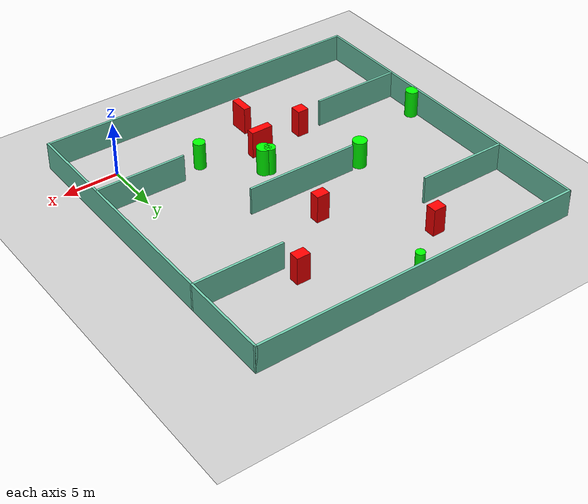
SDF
<sdf version="1.7">
 <world name="default">
  <light name="sun" type="directional">
   <pose>0 0 10 0 -0 0</pose>
   <diffuse>0.8 0.8 0.8 1</diffuse>
   <specular>0.2 0.2 0.2 1</specular>
   <attenuation>
    <range>1000</range>
    <constant>0.9</constant>
    <linear>0.01</linear>
    <quadratic>0.001</quadratic>
   </attenuation>
   <direction>-0.5 0.1 -0.9</direction>
   <spot><inner_angle>0</inner_angle><outer_angle>0</outer_angle><falloff>0</falloff></spot>
  </light>
  <model name="ground_plane">
   <static>1</static>
   <link name="link">
    <collision name="collision">
     <geometry><plane><normal>0 0 1</normal><size>100 100</size></plane></geometry>
     <surface>
      <contact><collide_bitmask>65535</collide_bitmask></contact>
      <friction><ode><mu>100</mu><mu2>50</mu2></ode></friction>
     </surface>
    </collision>
    <visual name="visual">
     <cast_shadows>0</cast_shadows>
     <geometry><plane><normal>0 0 1</normal><size>100 100</size></plane></geometry>
     <material>
      <script><uri>file://media/materials/scripts/gazebo.material</uri><name>Gazebo/Grey</name></script>
     </material>
    </visual>
   </link>
  </model>
  <gravity>0 0 -9.8</gravity>
  <magnetic_field>6e-06 2.3e-05 -4.2e-05</magnetic_field>
  <atmosphere type="adiabatic"/>
  <physics type="ode">
   <max_step_size>0.001</max_step_size>
   <real_time_factor>1</real_time_factor>
   <real_time_update_rate>1000</real_time_update_rate>
  </physics>
  <scene><ambient>0.4 0.4 0.4 1</ambient><background>0.7 0.7 0.7 1</background><shadows>1</shadows></scene>
  <spherical_coordinates>
   <surface_model>EARTH_WGS84</surface_model>
   <latitude_deg>0</latitude_deg>
   <longitude_deg>0</longitude_deg>
   <elevation>0</elevation>
   <heading_deg>0</heading_deg>
  </spherical_coordinates>
  <model name="my_base_walls">
   <link name="Wall_10">
    <collision name="Wall_10_Collision">
     <geometry><box><size>8.2 0.2 2.5</size></box></geometry>
     <pose>0 0 1.25 0 -0 0</pose>
    </collision>
    <visual name="Wall_10_Visual">
     <pose>0 0 1.25 0 -0 0</pose>
     <geometry><box><size>8.2 0.2 2.5</size></box></geometry>
     <material>
      <script><uri>file://media/materials/scripts/gazebo.material</uri><name>Gazebo/Grey</name></script>
      <ambient>0.435294 0.796078 0.67451 1</ambient>
     </material>
     <meta><layer>0</layer></meta>
    </visual>
    <pose>-11 -7 0 0 -0 0</pose>
   </link>
   <link name="Wall_12">
    <collision name="Wall_12_Collision">
     <geometry><box><size>8.2 0.2 2.5</size></box></geometry>
     <pose>0 0 1.25 0 -0 0</pose>
    </collision>
    <visual name="Wall_12_Visual">
     <pose>0 0 1.25 0 -0 0</pose>
     <geometry><box><size>8.2 0.2 2.5</size></box></geometry>
     <material>
      <script><uri>file://media/materials/scripts/gazebo.material</uri><name>Gazebo/Grey</name></script>
      <ambient>0.435294 0.796078 0.67451 1</ambient>
     </material>
     <meta><layer>0</layer></meta>
    </visual>
    <pose>-11 7 0 0 -0 0</pose>
   </link>
   <link name="Wall_14">
    <collision name="Wall_14_Collision">
     <geometry><box><size>8.2 0.2 2.5</size></box></geometry>
     <pose>0 0 1.25 0 -0 0</pose>
    </collision>
    <visual name="Wall_14_Visual">
     <pose>0 0 1.25 0 -0 0</pose>
     <geometry><box><size>8.2 0.2 2.5</size></box></geometry>
     <material>
      <script><uri>file://media/materials/scripts/gazebo.material</uri><name>Gazebo/Grey</name></script>
      <ambient>0.435294 0.796078 0.67451 1</ambient>
     </material>
     <meta><layer>0</layer></meta>
    </visual>
    <pose>11 7 0 0 -0 3.14159</pose>
   </link>
   <link name="Wall_16">
    <collision name="Wall_16_Collision">
     <geometry><box><size>10.2 0.2 2.5</size></box></geometry>
     <pose>0 0 1.25 0 -0 0</pose>
    </collision>
    <visual name="Wall_16_Visual">
     <pose>0 0 1.25 0 -0 0</pose>
     <geometry><box><size>10.2 0.2 2.5</size></box></geometry>
     <material>
      <script><uri>file://media/materials/scripts/gazebo.material</uri><name>Gazebo/Grey</name></script>
      <ambient>0.435294 0.796078 0.67451 1</ambient>
     </material>
     <meta><layer>0</layer></meta>
    </visual>
    <pose>0 0 0 0 -0 3.14159</pose>
   </link>
   <link name="Wall_2">
    <collision name="Wall_2_Collision">
     <geometry><box><size>30.2 0.2 2.5</size></box></geometry>
     <pose>0 0 1.25 0 -0 0</pose>
    </collision>
    <visual name="Wall_2_Visual">
     <pose>0 0 1.25 0 -0 0</pose>
     <geometry><box><size>30.2 0.2 2.5</size></box></geometry>
     <material>
      <script><uri>file://media/materials/scripts/gazebo.material</uri><name>Gazebo/Grey</name></script>
      <ambient>0.435294 0.796078 0.67451 1</ambient>
     </material>
     <meta><layer>0</layer></meta>
    </visual>
    <pose>0 -15 0 0 -0 3.14159</pose>
   </link>
   <link name="Wall_3">
    <collision name="Wall_3_Collision">
     <geometry><box><size>30.2 0.2 2.5</size></box></geometry>
     <pose>0 0 1.25 0 -0 0</pose>
    </collision>
    <visual name="Wall_3_Visual">
     <pose>0 0 1.25 0 -0 0</pose>
     <geometry><box><size>30.2 0.2 2.5</size></box></geometry>
     <material>
      <script><uri>file://media/materials/scripts/gazebo.material</uri><name>Gazebo/Grey</name></script>
      <ambient>0.435294 0.796078 0.67451 1</ambient>
     </material>
     <meta><layer>0</layer></meta>
    </visual>
    <pose>-15 0 0 0 -0 1.5708</pose>
   </link>
   <link name="Wall_4">
    <collision name="Wall_4_Collision">
     <geometry><box><size>30.2 0.2 2.5</size></box></geometry>
     <pose>0 0 1.25 0 -0 0</pose>
    </collision>
    <visual name="Wall_4_Visual">
     <pose>0 0 1.25 0 -0 0</pose>
     <geometry><box><size>30.2 0.2 2.5</size></box></geometry>
     <material>
      <script><uri>file://media/materials/scripts/gazebo.material</uri><name>Gazebo/Grey</name></script>
      <ambient>0.435294 0.796078 0.67451 1</ambient>
     </material>
     <meta><layer>0</layer></meta>
    </visual>
    <pose>0 15 0 0 -0 0</pose>
   </link>
   <link name="Wall_6">
    <collision name="Wall_6_Collision">
     <geometry><box><size>30.2 0.2 2.5</size></box></geometry>
     <pose>0 0 1.25 0 -0 0</pose>
    </collision>
    <visual name="Wall_6_Visual">
     <pose>0 0 1.25 0 -0 0</pose>
     <geometry><box><size>30.2 0.2 2.5</size></box></geometry>
     <material>
      <script><uri>file://media/materials/scripts/gazebo.material</uri><name>Gazebo/Grey</name></script>
      <ambient>0.435294 0.796078 0.67451 1</ambient>
     </material>
     <meta><layer>0</layer></meta>
    </visual>
    <pose>15 0 0 0 -0 1.5708</pose>
   </link>
   <link name="Wall_8">
    <collision name="Wall_8_Collision">
     <geometry><box><size>8.2 0.2 2.5</size></box></geometry>
     <pose>0 0 1.25 0 -0 0</pose>
    </collision>
    <visual name="Wall_8_Visual">
     <pose>0 0 1.25 0 -0 0</pose>
     <geometry><box><size>8.2 0.2 2.5</size></box></geometry>
     <material>
      <script><uri>file://media/materials/scripts/gazebo.material</uri><name>Gazebo/Grey</name></script>
      <ambient>0.435294 0.796078 0.67451 1</ambient>
     </material>
     <meta><layer>0</layer></meta>
    </visual>
    <pose>11 -7 0 0 -0 3.14159</pose>
   </link>
   <static>1</static>
   <pose>-11 11 0 0 -0 0</pose>
  </model>
  <model name="cylinder1">
   <static>1</static>
   <link name="link">
    <inertial>
     <mass>1</mass>
     <inertia><ixx>0.5</ixx><ixy>0</ixy><ixz>0</ixz><iyy>0.5</iyy><iyz>0</iyz><izz>1</izz></inertia>
    </inertial>
    <collision name="collision">
     <geometry><cylinder><radius>0.5628486682822258</radius><length>2.5</length></cylinder></geometry>
    </collision>
    <visual name="visual">
     <geometry><cylinder><radius>0.5628486682822258</radius><length>2.5</length></cylinder></geometry>
     <material>
      <ambient>0 1 0 1</ambient>
      <diffuse>0 1 0 1</diffuse>
      <specular>0.1 0.1 0.1 1</specular>
      <emissive>0 0 0 0</emissive>
     </material>
    </visual>
   </link>
   <pose>-25.512994832365887 7.395693974042974 1.25 0 0 0</pose>
  </model>
  <model name="cylinder2">
   <static>1</static>
   <link name="link">
    <inertial>
     <mass>1</mass>
     <inertia><ixx>0.5</ixx><ixy>0</ixy><ixz>0</ixz><iyy>0.5</iyy><iyz>0</iyz><izz>1</izz></inertia>
    </inertial>
    <collision name="collision">
     <geometry><cylinder><radius>0.5008401660061863</radius><length>2.5</length></cylinder></geometry>
    </collision>
    <visual name="visual">
     <geometry><cylinder><radius>0.5008401660061863</radius><length>2.5</length></cylinder></geometry>
     <material>
      <ambient>0 1 0 1</ambient>
      <diffuse>0 1 0 1</diffuse>
      <specular>0.1 0.1 0.1 1</specular>
      <emissive>0 0 0 0</emissive>
     </material>
    </visual>
   </link>
   <pose>-10.462837461337127 7.163089195860506 1.25 0 0 0</pose>
  </model>
  <model name="cylinder3">
   <static>1</static>
   <link name="link">
    <inertial>
     <mass>1</mass>
     <inertia><ixx>0.5</ixx><ixy>0</ixy><ixz>0</ixz><iyy>0.5</iyy><iyz>0</iyz><izz>1</izz></inertia>
    </inertial>
    <collision name="collision">
     <geometry><cylinder><radius>0.6363632490268765</radius><length>2.5</length></cylinder></geometry>
    </collision>
    <visual name="visual">
     <geometry><cylinder><radius>0.6363632490268765</radius><length>2.5</length></cylinder></geometry>
     <material>
      <ambient>0 1 0 1</ambient>
      <diffuse>0 1 0 1</diffuse>
      <specular>0.1 0.1 0.1 1</specular>
      <emissive>0 0 0 0</emissive>
     </material>
    </visual>
   </link>
   <pose>-10.056763334267092 6.887093457249303 1.25 0 0 0</pose>
  </model>
  <model name="cylinder4">
   <static>1</static>
   <link name="link">
    <inertial>
     <mass>1</mass>
     <inertia><ixx>0.5</ixx><ixy>0</ixy><ixz>0</ixz><iyy>0.5</iyy><iyz>0</iyz><izz>1</izz></inertia>
    </inertial>
    <collision name="collision">
     <geometry><cylinder><radius>0.634393831394015</radius><length>2.5</length></cylinder></geometry>
    </collision>
    <visual name="visual">
     <geometry><cylinder><radius>0.634393831394015</radius><length>2.5</length></cylinder></geometry>
     <material>
      <ambient>0 1 0 1</ambient>
      <diffuse>0 1 0 1</diffuse>
      <specular>0.1 0.1 0.1 1</specular>
      <emissive>0 0 0 0</emissive>
     </material>
    </visual>
   </link>
   <pose>-17.042314891434017 10.773225138126923 1.25 0 0 0</pose>
  </model>
  <model name="cylinder5">
   <static>1</static>
   <link name="link">
    <inertial>
     <mass>1</mass>
     <inertia><ixx>0.5</ixx><ixy>0</ixy><ixz>0</ixz><iyy>0.5</iyy><iyz>0</iyz><izz>1</izz></inertia>
    </inertial>
    <collision name="collision">
     <geometry><cylinder><radius>0.39653945075399194</radius><length>2.5</length></cylinder></geometry>
    </collision>
    <visual name="visual">
     <geometry><cylinder><radius>0.39653945075399194</radius><length>2.5</length></cylinder></geometry>
     <material>
      <ambient>0 1 0 1</ambient>
      <diffuse>0 1 0 1</diffuse>
      <specular>0.1 0.1 0.1 1</specular>
      <emissive>0 0 0 0</emissive>
     </material>
    </visual>
   </link>
   <pose>-11.60435141855761 24.92156066059314 1.25 0 0 0</pose>
  </model>
  <model name="cylinder6">
   <static>1</static>
   <link name="link">
    <inertial>
     <mass>1</mass>
     <inertia><ixx>0.5</ixx><ixy>0</ixy><ixz>0</ixz><iyy>0.5</iyy><iyz>0</iyz><izz>1</izz></inertia>
    </inertial>
    <collision name="collision">
     <geometry><cylinder><radius>0.521903179051662</radius><length>2.5</length></cylinder></geometry>
    </collision>
    <visual name="visual">
     <geometry><cylinder><radius>0.521903179051662</radius><length>2.5</length></cylinder></geometry>
     <material>
      <ambient>0 1 0 1</ambient>
      <diffuse>0 1 0 1</diffuse>
      <specular>0.1 0.1 0.1 1</specular>
      <emissive>0 0 0 0</emissive>
     </material>
    </visual>
   </link>
   <pose>-6.1649606821886636 3.1133959895087333 1.25 0 0 0</pose>
  </model>
  <model name="box1">
   <static>1</static>
   <link name="link">
    <inertial>
     <mass>1</mass>
     <inertia><ixx>0.083</ixx><ixy>0</ixy><ixz>0</ixz><iyy>0.083</iyy><iyz>0</iyz><izz>0.083</izz></inertia>
    </inertial>
    <collision name="collision">
     <geometry><box><size>0.6612021151216609 1.79865158353121 2.5</size></box></geometry>
    </collision>
    <visual name="visual">
     <geometry><box><size>0.6612021151216609 1.79865158353121 2.5</size></box></geometry>
     <material>
      <ambient>1 0 0 1</ambient>
      <diffuse>1 0 0 1</diffuse>
      <specular>0.1 0.1 0.1 1</specular>
      <emissive>0 0 0 0</emissive>
     </material>
    </visual>
    <sensor name="my_contact" type="contact">
     <contact><collision>box_collision</collision><topic>__default_topic__</topic></contact>
    </sensor>
   </link>
   <pose>-12.24341531397431 0.4175967811197805 1.25 0 0 0</pose>
  </model>
  <model name="box2">
   <static>1</static>
   <link name="link">
    <inertial>
     <mass>1</mass>
     <inertia><ixx>0.083</ixx><ixy>0</ixy><ixz>0</ixz><iyy>0.083</iyy><iyz>0</iyz><izz>0.083</izz></inertia>
    </inertial>
    <collision name="collision">
     <geometry><box><size>1.210877310619729 0.9167268184455135 2.5</size></box></geometry>
    </collision>
    <visual name="visual">
     <geometry><box><size>1.210877310619729 0.9167268184455135 2.5</size></box></geometry>
     <material>
      <ambient>1 0 0 1</ambient>
      <diffuse>1 0 0 1</diffuse>
      <specular>0.1 0.1 0.1 1</specular>
      <emissive>0 0 0 0</emissive>
     </material>
    </visual>
    <sensor name="my_contact" type="contact">
     <contact><collision>box_collision</collision><topic>__default_topic__</topic></contact>
    </sensor>
   </link>
   <pose>-4.334246456285424 19.783209818200927 1.25 0 0 0</pose>
  </model>
  <model name="box3">
   <static>1</static>
   <link name="link">
    <inertial>
     <mass>1</mass>
     <inertia><ixx>0.083</ixx><ixy>0</ixy><ixz>0</ixz><iyy>0.083</iyy><iyz>0</iyz><izz>0.083</izz></inertia>
    </inertial>
    <collision name="collision">
     <geometry><box><size>2.016844796970421 0.7029842779286531 2.5</size></box></geometry>
    </collision>
    <visual name="visual">
     <geometry><box><size>2.016844796970421 0.7029842779286531 2.5</size></box></geometry>
     <material>
      <ambient>1 0 0 1</ambient>
      <diffuse>1 0 0 1</diffuse>
      <specular>0.1 0.1 0.1 1</specular>
      <emissive>0 0 0 0</emissive>
     </material>
    </visual>
    <sensor name="my_contact" type="contact">
     <contact><collision>box_collision</collision><topic>__default_topic__</topic></contact>
    </sensor>
   </link>
   <pose>-11.420100258410221 4.387709173804836 1.25 0 0 0</pose>
  </model>
  <model name="box4">
   <static>1</static>
   <link name="link">
    <inertial>
     <mass>1</mass>
     <inertia><ixx>0.083</ixx><ixy>0</ixy><ixz>0</ixz><iyy>0.083</iyy><iyz>0</iyz><izz>0.083</izz></inertia>
    </inertial>
    <collision name="collision">
     <geometry><box><size>1.1488863612787434 0.9613755171630599 2.5</size></box></geometry>
    </collision>
    <visual name="visual">
     <geometry><box><size>1.1488863612787434 0.9613755171630599 2.5</size></box></geometry>
     <material>
      <ambient>1 0 0 1</ambient>
      <diffuse>1 0 0 1</diffuse>
      <specular>0.1 0.1 0.1 1</specular>
      <emissive>0 0 0 0</emissive>
     </material>
    </visual>
    <sensor name="my_contact" type="contact">
     <contact><collision>box_collision</collision><topic>__default_topic__</topic></contact>
    </sensor>
   </link>
   <pose>-16.282168885367074 21.3267608392224 1.25 0 0 0</pose>
  </model>
  <model name="box5">
   <static>1</static>
   <link name="link">
    <inertial>
     <mass>1</mass>
     <inertia><ixx>0.083</ixx><ixy>0</ixy><ixz>0</ixz><iyy>0.083</iyy><iyz>0</iyz><izz>0.083</izz></inertia>
    </inertial>
    <collision name="collision">
     <geometry><box><size>1.185964567966292 0.9077504685558929 2.5</size></box></geometry>
    </collision>
    <visual name="visual">
     <geometry><box><size>1.185964567966292 0.9077504685558929 2.5</size></box></geometry>
     <material>
      <ambient>1 0 0 1</ambient>
      <diffuse>1 0 0 1</diffuse>
      <specular>0.1 0.1 0.1 1</specular>
      <emissive>0 0 0 0</emissive>
     </material>
    </visual>
    <sensor name="my_contact" type="contact">
     <contact><collision>box_collision</collision><topic>__default_topic__</topic></contact>
    </sensor>
   </link>
   <pose>-10.028001505684388 14.64077031950541 1.25 0 0 0</pose>
  </model>
  <model name="box6">
   <static>1</static>
   <link name="link">
    <inertial>
     <mass>1</mass>
     <inertia><ixx>0.083</ixx><ixy>0</ixy><ixz>0</ixz><iyy>0.083</iyy><iyz>0</iyz><izz>0.083</izz></inertia>
    </inertial>
    <collision name="collision">
     <geometry><box><size>1.036790712492519 0.9853032457710866 2.5</size></box></geometry>
    </collision>
    <visual name="visual">
     <geometry><box><size>1.036790712492519 0.9853032457710866 2.5</size></box></geometry>
     <material>
      <ambient>1 0 0 1</ambient>
      <diffuse>1 0 0 1</diffuse>
      <specular>0.1 0.1 0.1 1</specular>
      <emissive>0 0 0 0</emissive>
     </material>
    </visual>
    <sensor name="my_contact" type="contact">
     <contact><collision>box_collision</collision><topic>__default_topic__</topic></contact>
    </sensor>
   </link>
   <pose>-15.906391338438432 3.9308309637050574 1.25 0 0 0</pose>
  </model>
 </world>
</sdf>
